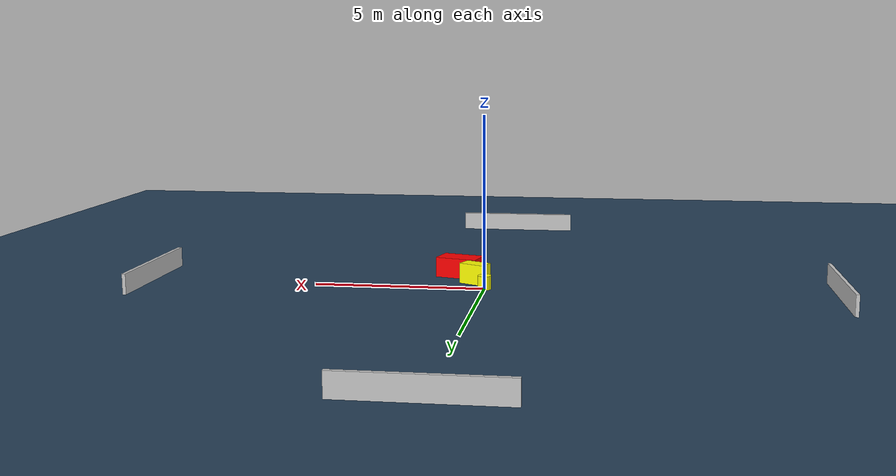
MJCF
<?xml version="1.0" ?>
<mujoco model="generated_environment">
  <option timestep="0.01" integrator="RK4" cone="elliptic"/>
  <default>
    <geom density="1"/>
  </default>
  <asset>
    <texture builtin="gradient" height="3072" name="skybox" rgb1="0.3 0.5 0.7" rgb2="0 0 0" type="skybox" width="512"/>
    <texture builtin="checker" height="300" name="groundplane" rgb1="0.2 0.3 0.4" rgb2="0.1 0.2 0.3" type="2d" width="300"/>
    <material name="groundplane" reflectance="0.2" texrepeat="5 5" texture="groundplane"/>
  </asset>
  <worldbody>
    <light dir="0 0 -1" directional="true" pos="0 0 1.5"/>
    <geom condim="3" friction="0.5 0.005 0.001" material="groundplane" name="floor" pos="0 0 0" size="0 0 0.05" type="plane"/>
    <body name="walls">
      <geom name="wall_1" condim="4" pos="-10.0 0.0 0.3" rgba="0.800000011920929 0.800000011920929 0.800000011920929 1.0" size="0.05 2.0 0.3" type="box"/>
      <geom name="wall_2" condim="4" pos="10.0 0.0 0.3" rgba="0.800000011920929 0.800000011920929 0.800000011920929 1.0" size="0.05 2.0 0.3" type="box"/>
      <geom name="wall_3" condim="4" pos="0.0 -10.0 0.3" rgba="0.800000011920929 0.800000011920929 0.800000011920929 1.0" size="2.0 0.05 0.3" type="box"/>
      <geom name="wall_4" condim="4" pos="0.0 10.0 0.3" rgba="0.800000011920929 0.800000011920929 0.800000011920929 1.0" size="2.0 0.05 0.3" type="box"/>
    </body>
    <body name="robot">
      <joint name="joint_x" type="slide" pos="0 0 0" axis="1 0 0"/>
      <joint name="joint_y" type="slide" pos="0 0 0" axis="0 1 0"/>
      <geom name="robot" type="cylinder" pos="0.0 0.0 0.2" size="0.2 0.2 0.0" mass="5.0" friction="1.0 0.005 0.0001" condim="4" rgba="1.0 1.0 0.0 1.0"/>
    </body>
    <body name="obstacle_1_movable">
      <geom name="obstacle_1_movable" condim="4" pos="0.37234742210105015 -0.7223922103530446 0.3" euler="0 0 334.11888768571316" friction="0.0 0.005 0.001" rgba="1.0 1.0 0.0 1.0" size="0.4002231774692032 0.23158682912675596 0.3" type="box" mass="0.1"/>
      <joint type="free"/>
    </body>
    <body name="obstacle_2_static">
      <geom name="obstacle_2_static" condim="4" pos="0.9573273128940392 -1.6323393783731048 0.3" euler="0 0 345.07061832824576" friction="0.0 0.005 0.001" rgba="1.0 0.0 0.0 1.0" size="0.6334318068388767 0.3637849119786176 0.3" type="box"/>
    </body>
  </worldbody>
  <actuator>
    <motor name="actuator_x" joint="joint_x" gear="1" ctrlrange="-1 1"/>
    <motor name="actuator_y" joint="joint_y" gear="1" ctrlrange="-1 1"/>
  </actuator>
</mujoco>
